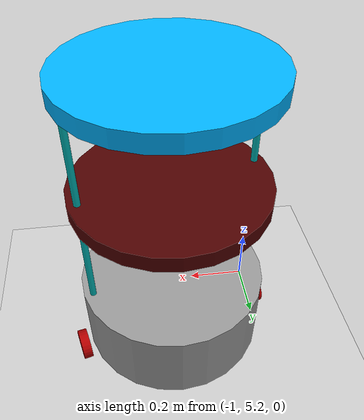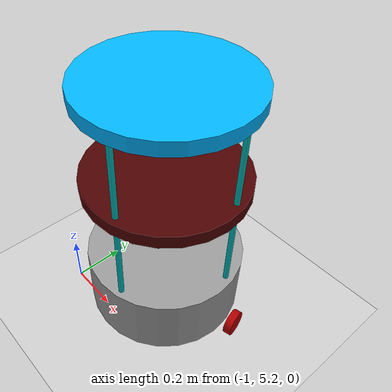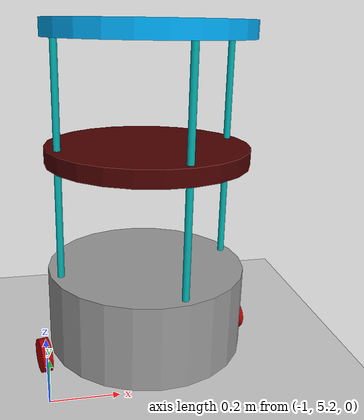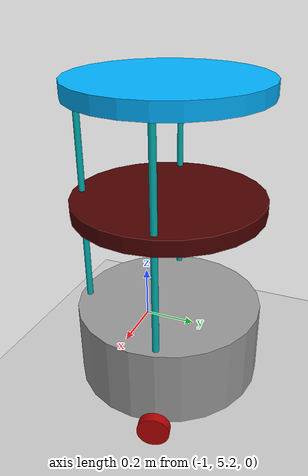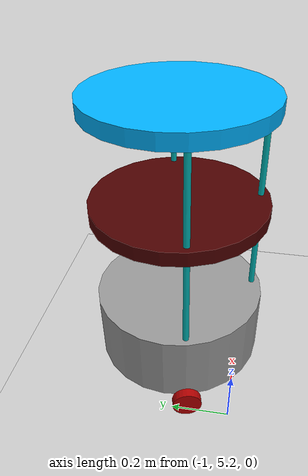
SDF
<sdf version="1.6">
 <world name="default">
  <model name="ground_plane">
   <static>1</static>
   <link name="link">
    <collision name="collision">
     <geometry><plane><normal>0 0 1</normal><size>100 100</size></plane></geometry>
     <surface><friction><ode><mu>100</mu><mu2>50</mu2></ode></friction></surface>
    </collision>
    <visual name="visual">
     <cast_shadows>0</cast_shadows>
     <geometry><plane><normal>0 0 1</normal><size>100 100</size></plane></geometry>
     <material>
      <script><uri>file://media/materials/scripts/gazebo.material</uri><name>Gazebo/Grey</name></script>
     </material>
    </visual>
   </link>
  </model>
  <model name="dummy_robot_model_0">
   <link name="link_0">
    <pose>0 0.027 0.6025 0 -0 0</pose>
    <inertial>
     <mass>1</mass>
     <inertia><ixx>0.145833</ixx><ixy>0</ixy><ixz>0</ixz><iyy>0.145833</iyy><iyz>0</iyz><izz>0.125</izz></inertia>
    </inertial>
    <visual name="visual">
     <geometry><cylinder><radius>0.3</radius><length>0.05</length></cylinder></geometry>
     <material>
      <lighting>1</lighting>
      <script><uri>file://media/materials/scripts/gazebo.material</uri><name>Gazebo/Grey</name></script>
      <shader type="pixel"><normal_map>__default__</normal_map></shader>
      <ambient>0 0 1 1</ambient>
      <diffuse>0 0.7 1 1</diffuse>
      <specular>0.01 0.01 1 1</specular>
      <emissive>0 0 0 1</emissive>
     </material>
    </visual>
    <collision name="collision">
     <geometry><cylinder><radius>0.3</radius><length>0.05</length></cylinder></geometry>
     <surface>
      <friction>
       <ode><mu>1</mu><mu2>1</mu2><fdir1>0 0 0</fdir1><slip1>0</slip1><slip2>0</slip2></ode>
       <torsional>
        <coefficient>1</coefficient>
        <patch_radius>0</patch_radius>
        <surface_radius>0</surface_radius>
        <use_patch_radius>1</use_patch_radius>
        <ode><slip>0</slip></ode>
       </torsional>
      </friction>
      <bounce><restitution_coefficient>0</restitution_coefficient><threshold>1e+06</threshold></bounce>
      <contact>
       <collide_without_contact>0</collide_without_contact>
       <collide_without_contact_bitmask>1</collide_without_contact_bitmask>
       <collide_bitmask>1</collide_bitmask>
       <ode>
        <soft_cfm>0</soft_cfm>
        <soft_erp>0.2</soft_erp>
        <kp>1e+13</kp>
        <kd>1</kd>
        <max_vel>0.01</max_vel>
        <min_depth>0</min_depth>
       </ode>
       <bullet>
        <split_impulse>1</split_impulse>
        <split_impulse_penetration_threshold>-0.01</split_impulse_penetration_threshold>
        <soft_cfm>0</soft_cfm>
        <soft_erp>0.2</soft_erp>
        <kp>1e+13</kp>
        <kd>1</kd>
       </bullet>
      </contact>
     </surface>
    </collision>
   </link>
   <link name="link_0_clone">
    <pose>0 0.027 -0.2225 0 -0 0</pose>
    <inertial>
     <mass>1</mass>
     <inertia><ixx>0.145833</ixx><ixy>0</ixy><ixz>0</ixz><iyy>0.145833</iyy><iyz>0</iyz><izz>0.125</izz></inertia>
    </inertial>
    <visual name="visual">
     <geometry><cylinder><radius>0.3</radius><length>0.25</length></cylinder></geometry>
     <material>
      <lighting>1</lighting>
      <script><uri>file://media/materials/scripts/gazebo.material</uri><name>Gazebo/Grey</name></script>
      <shader type="pixel"><normal_map>__default__</normal_map></shader>
      <ambient>0.3 0.3 0.3 1</ambient>
      <diffuse>0.7 0.7 0.7 1</diffuse>
      <specular>0.01 0.01 0.01 1</specular>
      <emissive>0 0 0 1</emissive>
     </material>
    </visual>
    <collision name="collision">
     <geometry><cylinder><radius>0.3</radius><length>0.25</length></cylinder></geometry>
     <surface>
      <friction>
       <ode><mu>1</mu><mu2>1</mu2><fdir1>0 0 0</fdir1><slip1>0</slip1><slip2>0</slip2></ode>
       <torsional>
        <coefficient>1</coefficient>
        <patch_radius>0</patch_radius>
        <surface_radius>0</surface_radius>
        <use_patch_radius>1</use_patch_radius>
        <ode><slip>0</slip></ode>
       </torsional>
      </friction>
      <bounce><restitution_coefficient>0</restitution_coefficient><threshold>1e+06</threshold></bounce>
      <contact>
       <collide_without_contact>0</collide_without_contact>
       <collide_without_contact_bitmask>1</collide_without_contact_bitmask>
       <collide_bitmask>1</collide_bitmask>
       <ode>
        <soft_cfm>0</soft_cfm>
        <soft_erp>0.2</soft_erp>
        <kp>1e+13</kp>
        <kd>1</kd>
        <max_vel>0.01</max_vel>
        <min_depth>0</min_depth>
       </ode>
       <bullet>
        <split_impulse>1</split_impulse>
        <split_impulse_penetration_threshold>-0.01</split_impulse_penetration_threshold>
        <soft_cfm>0</soft_cfm>
        <soft_erp>0.2</soft_erp>
        <kp>1e+13</kp>
        <kd>1</kd>
       </bullet>
      </contact>
     </surface>
    </collision>
   </link>
   <link name="link_0_clone_0">
    <pose>0 0.027 0.2525 0 -0 0</pose>
    <inertial>
     <mass>1</mass>
     <inertia><ixx>0.145833</ixx><ixy>0</ixy><ixz>0</ixz><iyy>0.145833</iyy><iyz>0</iyz><izz>0.125</izz></inertia>
    </inertial>
    <visual name="visual">
     <geometry><cylinder><radius>0.3</radius><length>0.05</length></cylinder></geometry>
     <material>
      <lighting>1</lighting>
      <script><uri>file://media/materials/scripts/gazebo.material</uri><name>Gazebo/Grey</name></script>
      <shader type="pixel"><normal_map>__default__</normal_map></shader>
      <ambient>0.3 0 0 0</ambient>
      <diffuse>0.7 0.7 0.7 1</diffuse>
      <specular>0.01 0.01 0.01 1</specular>
      <emissive>0 0 0 1</emissive>
     </material>
    </visual>
    <collision name="collision">
     <geometry><cylinder><radius>0.3</radius><length>0.05</length></cylinder></geometry>
     <surface>
      <friction>
       <ode><mu>1</mu><mu2>1</mu2><fdir1>0 0 0</fdir1><slip1>0</slip1><slip2>0</slip2></ode>
       <torsional>
        <coefficient>1</coefficient>
        <patch_radius>0</patch_radius>
        <surface_radius>0</surface_radius>
        <use_patch_radius>1</use_patch_radius>
        <ode><slip>0</slip></ode>
       </torsional>
      </friction>
      <bounce><restitution_coefficient>0</restitution_coefficient><threshold>1e+06</threshold></bounce>
      <contact>
       <collide_without_contact>0</collide_without_contact>
       <collide_without_contact_bitmask>1</collide_without_contact_bitmask>
       <collide_bitmask>1</collide_bitmask>
       <ode>
        <soft_cfm>0</soft_cfm>
        <soft_erp>0.2</soft_erp>
        <kp>1e+13</kp>
        <kd>1</kd>
        <max_vel>0.01</max_vel>
        <min_depth>0</min_depth>
       </ode>
       <bullet>
        <split_impulse>1</split_impulse>
        <split_impulse_penetration_threshold>-0.01</split_impulse_penetration_threshold>
        <soft_cfm>0</soft_cfm>
        <soft_erp>0.2</soft_erp>
        <kp>1e+13</kp>
        <kd>1</kd>
       </bullet>
      </contact>
     </surface>
    </collision>
   </link>
   <link name="link_1">
    <pose>-0.27 0.027 0.2525 0 -0 0</pose>
    <inertial>
     <mass>1</mass>
     <inertia><ixx>0.145833</ixx><ixy>0</ixy><ixz>0</ixz><iyy>0.145833</iyy><iyz>0</iyz><izz>0.125</izz></inertia>
    </inertial>
    <visual name="visual">
     <geometry><cylinder><radius>0.01</radius><length>0.72</length></cylinder></geometry>
     <material>
      <lighting>1</lighting>
      <script><uri>file://media/materials/scripts/gazebo.material</uri><name>Gazebo/Grey</name></script>
      <shader type="pixel"><normal_map>__default__</normal_map></shader>
      <ambient>0 0.3 0.3 1</ambient>
      <diffuse>0 0.7 0.7 1</diffuse>
      <specular>0 0.01 0.01 1</specular>
      <emissive>0 0 0 1</emissive>
     </material>
    </visual>
    <collision name="collision">
     <geometry><cylinder><radius>0.01</radius><length>0.72</length></cylinder></geometry>
     <surface>
      <friction>
       <ode><mu>1</mu><mu2>1</mu2><fdir1>0 0 0</fdir1><slip1>0</slip1><slip2>0</slip2></ode>
       <torsional>
        <coefficient>1</coefficient>
        <patch_radius>0</patch_radius>
        <surface_radius>0</surface_radius>
        <use_patch_radius>1</use_patch_radius>
        <ode><slip>0</slip></ode>
       </torsional>
      </friction>
      <bounce><restitution_coefficient>0</restitution_coefficient><threshold>1e+06</threshold></bounce>
      <contact>
       <collide_without_contact>0</collide_without_contact>
       <collide_without_contact_bitmask>1</collide_without_contact_bitmask>
       <collide_bitmask>1</collide_bitmask>
       <ode>
        <soft_cfm>0</soft_cfm>
        <soft_erp>0.2</soft_erp>
        <kp>1e+13</kp>
        <kd>1</kd>
        <max_vel>0.01</max_vel>
        <min_depth>0</min_depth>
       </ode>
       <bullet>
        <split_impulse>1</split_impulse>
        <split_impulse_penetration_threshold>-0.01</split_impulse_penetration_threshold>
        <soft_cfm>0</soft_cfm>
        <soft_erp>0.2</soft_erp>
        <kp>1e+13</kp>
        <kd>1</kd>
       </bullet>
      </contact>
     </surface>
    </collision>
   </link>
   <link name="link_1_clone">
    <pose>0 -0.243 0.2525 0 -0 0</pose>
    <inertial>
     <mass>1</mass>
     <inertia><ixx>0.145833</ixx><ixy>0</ixy><ixz>0</ixz><iyy>0.145833</iyy><iyz>0</iyz><izz>0.125</izz></inertia>
    </inertial>
    <visual name="visual">
     <geometry><cylinder><radius>0.01</radius><length>0.72</length></cylinder></geometry>
     <material>
      <lighting>1</lighting>
      <script><uri>file://media/materials/scripts/gazebo.material</uri><name>Gazebo/Grey</name></script>
      <shader type="pixel"><normal_map>__default__</normal_map></shader>
      <ambient>0 0.3 0.3 1</ambient>
      <diffuse>0 0.7 0.7 1</diffuse>
      <specular>0 0.01 0.01 1</specular>
      <emissive>0 0 0 1</emissive>
     </material>
    </visual>
    <collision name="collision">
     <geometry><cylinder><radius>0.01</radius><length>0.72</length></cylinder></geometry>
     <surface>
      <friction>
       <ode><mu>1</mu><mu2>1</mu2><fdir1>0 0 0</fdir1><slip1>0</slip1><slip2>0</slip2></ode>
       <torsional>
        <coefficient>1</coefficient>
        <patch_radius>0</patch_radius>
        <surface_radius>0</surface_radius>
        <use_patch_radius>1</use_patch_radius>
        <ode><slip>0</slip></ode>
       </torsional>
      </friction>
      <bounce><restitution_coefficient>0</restitution_coefficient><threshold>1e+06</threshold></bounce>
      <contact>
       <collide_without_contact>0</collide_without_contact>
       <collide_without_contact_bitmask>1</collide_without_contact_bitmask>
       <collide_bitmask>1</collide_bitmask>
       <ode>
        <soft_cfm>0</soft_cfm>
        <soft_erp>0.2</soft_erp>
        <kp>1e+13</kp>
        <kd>1</kd>
        <max_vel>0.01</max_vel>
        <min_depth>0</min_depth>
       </ode>
       <bullet>
        <split_impulse>1</split_impulse>
        <split_impulse_penetration_threshold>-0.01</split_impulse_penetration_threshold>
        <soft_cfm>0</soft_cfm>
        <soft_erp>0.2</soft_erp>
        <kp>1e+13</kp>
        <kd>1</kd>
       </bullet>
      </contact>
     </surface>
    </collision>
   </link>
   <link name="link_1_clone_clone">
    <pose>0.27 0.027 0.2525 0 -0 0</pose>
    <inertial>
     <mass>1</mass>
     <inertia><ixx>0.145833</ixx><ixy>0</ixy><ixz>0</ixz><iyy>0.145833</iyy><iyz>0</iyz><izz>0.125</izz></inertia>
    </inertial>
    <visual name="visual">
     <geometry><cylinder><radius>0.01</radius><length>0.72</length></cylinder></geometry>
     <material>
      <lighting>1</lighting>
      <script><uri>file://media/materials/scripts/gazebo.material</uri><name>Gazebo/Grey</name></script>
      <shader type="pixel"><normal_map>__default__</normal_map></shader>
      <ambient>0 0.3 0.3 1</ambient>
      <diffuse>0 0.7 0.7 1</diffuse>
      <specular>0 0.01 0.01 1</specular>
      <emissive>0 0 0 1</emissive>
     </material>
    </visual>
    <collision name="collision">
     <geometry><cylinder><radius>0.01</radius><length>0.72</length></cylinder></geometry>
     <surface>
      <friction>
       <ode><mu>1</mu><mu2>1</mu2><fdir1>0 0 0</fdir1><slip1>0</slip1><slip2>0</slip2></ode>
       <torsional>
        <coefficient>1</coefficient>
        <patch_radius>0</patch_radius>
        <surface_radius>0</surface_radius>
        <use_patch_radius>1</use_patch_radius>
        <ode><slip>0</slip></ode>
       </torsional>
      </friction>
      <bounce><restitution_coefficient>0</restitution_coefficient><threshold>1e+06</threshold></bounce>
      <contact>
       <collide_without_contact>0</collide_without_contact>
       <collide_without_contact_bitmask>1</collide_without_contact_bitmask>
       <collide_bitmask>1</collide_bitmask>
       <ode>
        <soft_cfm>0</soft_cfm>
        <soft_erp>0.2</soft_erp>
        <kp>1e+13</kp>
        <kd>1</kd>
        <max_vel>0.01</max_vel>
        <min_depth>0</min_depth>
       </ode>
       <bullet>
        <split_impulse>1</split_impulse>
        <split_impulse_penetration_threshold>-0.01</split_impulse_penetration_threshold>
        <soft_cfm>0</soft_cfm>
        <soft_erp>0.2</soft_erp>
        <kp>1e+13</kp>
        <kd>1</kd>
       </bullet>
      </contact>
     </surface>
    </collision>
   </link>
   <link name="link_2">
    <pose>-0 0.227 -0.3475 0 -0 0</pose>
    <inertial>
     <mass>1</mass>
     <inertia><ixx>0.1</ixx><ixy>0</ixy><ixz>0</ixz><iyy>0.1</iyy><iyz>0</iyz><izz>0.1</izz></inertia>
    </inertial>
    <visual name="visual">
     <geometry><sphere><radius>0.055</radius></sphere></geometry>
     <material>
      <lighting>1</lighting>
      <script><uri>file://media/materials/scripts/gazebo.material</uri><name>Gazebo/Grey</name></script>
      <shader type="pixel"><normal_map>__default__</normal_map></shader>
      <ambient>0.3 0.3 0.3 1</ambient>
      <diffuse>0 0 0.7 1</diffuse>
      <specular>0 0 0.01 1</specular>
      <emissive>0 0 1 1</emissive>
     </material>
    </visual>
    <collision name="collision">
     <geometry><sphere><radius>0.055</radius></sphere></geometry>
     <surface>
      <friction>
       <ode><mu>0</mu><mu2>0</mu2><fdir1>0 0 0</fdir1><slip1>1</slip1><slip2>1</slip2></ode>
       <torsional>
        <coefficient>1</coefficient>
        <patch_radius>0</patch_radius>
        <surface_radius>0</surface_radius>
        <use_patch_radius>1</use_patch_radius>
        <ode><slip>0</slip></ode>
       </torsional>
      </friction>
      <bounce><restitution_coefficient>0</restitution_coefficient><threshold>1e+06</threshold></bounce>
      <contact>
       <collide_without_contact>0</collide_without_contact>
       <collide_without_contact_bitmask>1</collide_without_contact_bitmask>
       <collide_bitmask>1</collide_bitmask>
       <ode>
        <soft_cfm>0</soft_cfm>
        <soft_erp>0.2</soft_erp>
        <kp>1e+13</kp>
        <kd>1</kd>
        <max_vel>0.01</max_vel>
        <min_depth>0</min_depth>
       </ode>
       <bullet>
        <split_impulse>1</split_impulse>
        <split_impulse_penetration_threshold>-0.01</split_impulse_penetration_threshold>
        <soft_cfm>0</soft_cfm>
        <soft_erp>0.2</soft_erp>
        <kp>1e+13</kp>
        <kd>1</kd>
       </bullet>
      </contact>
     </surface>
    </collision>
   </link>
   <link name="link_2_clone">
    <pose>0 -0.173 -0.3475 0 -0 0</pose>
    <inertial>
     <mass>1</mass>
     <inertia><ixx>0.1</ixx><ixy>0</ixy><ixz>0</ixz><iyy>0.1</iyy><iyz>0</iyz><izz>0.1</izz></inertia>
    </inertial>
    <visual name="visual">
     <geometry><sphere><radius>0.055</radius></sphere></geometry>
     <material>
      <lighting>1</lighting>
      <script><uri>file://media/materials/scripts/gazebo.material</uri><name>Gazebo/Grey</name></script>
      <shader type="pixel"><normal_map>__default__</normal_map></shader>
      <ambient>0.3 0.3 0.3 1</ambient>
      <diffuse>0.7 0.7 0.7 1</diffuse>
      <specular>0.01 0.01 0.01 1</specular>
      <emissive>0 0 0 1</emissive>
     </material>
    </visual>
    <collision name="collision">
     <geometry><sphere><radius>0.055</radius></sphere></geometry>
     <surface>
      <friction>
       <ode><mu>1</mu><mu2>1</mu2><fdir1>0 0 0</fdir1><slip1>0</slip1><slip2>0</slip2></ode>
       <torsional>
        <coefficient>1</coefficient>
        <patch_radius>0</patch_radius>
        <surface_radius>0</surface_radius>
        <use_patch_radius>1</use_patch_radius>
        <ode><slip>0</slip></ode>
       </torsional>
      </friction>
      <bounce><restitution_coefficient>0</restitution_coefficient><threshold>1e+06</threshold></bounce>
      <contact>
       <collide_without_contact>0</collide_without_contact>
       <collide_without_contact_bitmask>1</collide_without_contact_bitmask>
       <collide_bitmask>1</collide_bitmask>
       <ode>
        <soft_cfm>0</soft_cfm>
        <soft_erp>0.2</soft_erp>
        <kp>1e+13</kp>
        <kd>1</kd>
        <max_vel>0.01</max_vel>
        <min_depth>0</min_depth>
       </ode>
       <bullet>
        <split_impulse>1</split_impulse>
        <split_impulse_penetration_threshold>-0.01</split_impulse_penetration_threshold>
        <soft_cfm>0</soft_cfm>
        <soft_erp>0.2</soft_erp>
        <kp>1e+13</kp>
        <kd>1</kd>
       </bullet>
      </contact>
     </surface>
    </collision>
   </link>
   <link name="link_3">
    <pose>0.33 0.027 -0.3475 -0.000314 -1.5707 0.000314</pose>
    <inertial>
     <mass>1</mass>
     <inertia><ixx>0.145833</ixx><ixy>0</ixy><ixz>0</ixz><iyy>0.145833</iyy><iyz>0</iyz><izz>0.125</izz></inertia>
    </inertial>
    <visual name="visual">
     <geometry><cylinder><radius>0.05</radius><length>0.03</length></cylinder></geometry>
     <material>
      <lighting>1</lighting>
      <script><uri>file://media/materials/scripts/gazebo.material</uri><name>Gazebo/Grey</name></script>
      <shader type="pixel"><normal_map>__default__</normal_map></shader>
      <ambient>0.3 0 0 0</ambient>
      <diffuse>0.7 0 0 0</diffuse>
      <specular>0.01 0 0 0</specular>
      <emissive>1 0 0 0</emissive>
     </material>
    </visual>
    <collision name="collision">
     <geometry><cylinder><radius>0.05</radius><length>0.03</length></cylinder></geometry>
     <surface>
      <friction>
       <ode><mu>1</mu><mu2>1</mu2><fdir1>0 0 0</fdir1><slip1>0</slip1><slip2>0</slip2></ode>
       <torsional>
        <coefficient>1</coefficient>
        <patch_radius>0</patch_radius>
        <surface_radius>0</surface_radius>
        <use_patch_radius>1</use_patch_radius>
        <ode><slip>0</slip></ode>
       </torsional>
      </friction>
      <bounce><restitution_coefficient>0</restitution_coefficient><threshold>1e+06</threshold></bounce>
      <contact>
       <collide_without_contact>0</collide_without_contact>
       <collide_without_contact_bitmask>1</collide_without_contact_bitmask>
       <collide_bitmask>1</collide_bitmask>
       <ode>
        <soft_cfm>0</soft_cfm>
        <soft_erp>0.2</soft_erp>
        <kp>1e+13</kp>
        <kd>1</kd>
        <max_vel>0.01</max_vel>
        <min_depth>0</min_depth>
       </ode>
       <bullet>
        <split_impulse>1</split_impulse>
        <split_impulse_penetration_threshold>-0.01</split_impulse_penetration_threshold>
        <soft_cfm>0</soft_cfm>
        <soft_erp>0.2</soft_erp>
        <kp>1e+13</kp>
        <kd>1</kd>
       </bullet>
      </contact>
     </surface>
    </collision>
   </link>
   <link name="link_3_clone">
    <pose>-0.33 0.027 -0.3475 -0.000314 -1.5707 0.000314</pose>
    <inertial>
     <mass>1</mass>
     <inertia><ixx>0.145833</ixx><ixy>0</ixy><ixz>0</ixz><iyy>0.145833</iyy><iyz>0</iyz><izz>0.125</izz></inertia>
    </inertial>
    <visual name="visual">
     <geometry><cylinder><radius>0.05</radius><length>0.03</length></cylinder></geometry>
     <material>
      <lighting>1</lighting>
      <script><uri>file://media/materials/scripts/gazebo.material</uri><name>Gazebo/Grey</name></script>
      <shader type="pixel"><normal_map>__default__</normal_map></shader>
      <ambient>0.3 0 0 0</ambient>
      <diffuse>0.7 0 0 0</diffuse>
      <specular>0.01 0 0 0</specular>
      <emissive>1 0 0 0</emissive>
     </material>
    </visual>
    <collision name="collision">
     <geometry><cylinder><radius>0.05</radius><length>0.03</length></cylinder></geometry>
     <surface>
      <friction>
       <ode><mu>1</mu><mu2>1</mu2><fdir1>0 0 0</fdir1><slip1>0</slip1><slip2>0</slip2></ode>
       <torsional>
        <coefficient>1</coefficient>
        <patch_radius>0</patch_radius>
        <surface_radius>0</surface_radius>
        <use_patch_radius>1</use_patch_radius>
        <ode><slip>0</slip></ode>
       </torsional>
      </friction>
      <bounce><restitution_coefficient>0</restitution_coefficient><threshold>1e+06</threshold></bounce>
      <contact>
       <collide_without_contact>0</collide_without_contact>
       <collide_without_contact_bitmask>1</collide_without_contact_bitmask>
       <collide_bitmask>1</collide_bitmask>
       <ode>
        <soft_cfm>0</soft_cfm>
        <soft_erp>0.2</soft_erp>
        <kp>1e+13</kp>
        <kd>1</kd>
        <max_vel>0.01</max_vel>
        <min_depth>0</min_depth>
       </ode>
       <bullet>
        <split_impulse>1</split_impulse>
        <split_impulse_penetration_threshold>-0.01</split_impulse_penetration_threshold>
        <soft_cfm>0</soft_cfm>
        <soft_erp>0.2</soft_erp>
        <kp>1e+13</kp>
        <kd>1</kd>
       </bullet>
      </contact>
     </surface>
    </collision>
   </link>
   <joint name="link_0_JOINT_0" type="screw">
    <parent>link_0</parent>
    <child>link_1_clone_clone</child>
    <axis>
     <xyz>0 0 1</xyz>
     <use_parent_model_frame>0</use_parent_model_frame>
     <limit>
      <lower>-1.79769e+308</lower>
      <upper>1.79769e+308</upper>
      <effort>-1</effort>
      <velocity>-1</velocity>
     </limit>
     <dynamics>
      <spring_reference>0</spring_reference>
      <spring_stiffness>0</spring_stiffness>
      <damping>0</damping>
      <friction>0</friction>
     </dynamics>
    </axis>
    <physics>
     <ode><limit><cfm>0</cfm><erp>0.2</erp></limit><suspension><cfm>0</cfm><erp>0.2</erp></suspension></ode>
    </physics>
    <thread_pitch>1</thread_pitch>
   </joint>
   <joint name="link_0_JOINT_1" type="screw">
    <parent>link_0</parent>
    <child>link_1</child>
    <axis>
     <xyz>0 0 1</xyz>
     <use_parent_model_frame>0</use_parent_model_frame>
     <limit>
      <lower>-1.79769e+308</lower>
      <upper>1.79769e+308</upper>
      <effort>-1</effort>
      <velocity>-1</velocity>
     </limit>
     <dynamics>
      <spring_reference>0</spring_reference>
      <spring_stiffness>0</spring_stiffness>
      <damping>0</damping>
      <friction>0</friction>
     </dynamics>
    </axis>
    <physics>
     <ode><limit><cfm>0</cfm><erp>0.2</erp></limit><suspension><cfm>0</cfm><erp>0.2</erp></suspension></ode>
    </physics>
    <thread_pitch>1</thread_pitch>
   </joint>
   <joint name="link_0_JOINT_2" type="screw">
    <parent>link_0</parent>
    <child>link_1_clone</child>
    <axis>
     <xyz>0 0 1</xyz>
     <use_parent_model_frame>0</use_parent_model_frame>
     <limit>
      <lower>-1.79769e+308</lower>
      <upper>1.79769e+308</upper>
      <effort>-1</effort>
      <velocity>-1</velocity>
     </limit>
     <dynamics>
      <spring_reference>0</spring_reference>
      <spring_stiffness>0</spring_stiffness>
      <damping>0</damping>
      <friction>0</friction>
     </dynamics>
    </axis>
    <physics>
     <ode><limit><cfm>0</cfm><erp>0.2</erp></limit><suspension><cfm>0</cfm><erp>0.2</erp></suspension></ode>
    </physics>
    <thread_pitch>1</thread_pitch>
   </joint>
   <joint name="link_0_clone_0_JOINT_3" type="fixed">
    <parent>link_0_clone_0</parent>
    <child>link_1_clone_clone</child>
    <physics>
     <ode><limit><cfm>0</cfm><erp>0.2</erp></limit><suspension><cfm>0</cfm><erp>0.2</erp></suspension></ode>
    </physics>
   </joint>
   <joint name="link_0_clone_0_JOINT_4" type="fixed">
    <parent>link_0_clone_0</parent>
    <child>link_1</child>
    <physics>
     <ode><limit><cfm>0</cfm><erp>0.2</erp></limit><suspension><cfm>0</cfm><erp>0.2</erp></suspension></ode>
    </physics>
   </joint>
   <joint name="link_0_clone_0_JOINT_5" type="fixed">
    <parent>link_0_clone_0</parent>
    <child>link_1_clone</child>
    <physics>
     <ode><limit><cfm>0</cfm><erp>0.2</erp></limit><suspension><cfm>0</cfm><erp>0.2</erp></suspension></ode>
    </physics>
   </joint>
   <joint name="link_0_clone_JOINT_0" type="fixed">
    <parent>link_0_clone</parent>
    <child>link_2_clone</child>
    <physics>
     <ode><limit><cfm>0</cfm><erp>0.2</erp></limit><suspension><cfm>0</cfm><erp>0.2</erp></suspension></ode>
    </physics>
   </joint>
   <joint name="link_0_clone_JOINT_10" type="fixed">
    <parent>link_0_clone</parent>
    <child>link_2</child>
    <physics>
     <ode><limit><cfm>0</cfm><erp>0.2</erp></limit><suspension><cfm>0</cfm><erp>0.2</erp></suspension></ode>
    </physics>
   </joint>
   <joint name="link_0_clone_JOINT_11" type="revolute">
    <parent>link_0_clone</parent>
    <child>link_3_clone</child>
    <pose>-0.01 0 0 0 -0 0</pose>
    <axis>
     <xyz>0 0 -1</xyz>
     <use_parent_model_frame>0</use_parent_model_frame>
     <limit>
      <lower>-1.79769e+308</lower>
      <upper>1.79769e+308</upper>
      <effort>-1</effort>
      <velocity>-1</velocity>
     </limit>
     <dynamics>
      <spring_reference>0</spring_reference>
      <spring_stiffness>0</spring_stiffness>
      <damping>0</damping>
      <friction>0</friction>
     </dynamics>
    </axis>
    <physics>
     <ode><limit><cfm>0</cfm><erp>0.2</erp></limit><suspension><cfm>0</cfm><erp>0.2</erp></suspension></ode>
    </physics>
   </joint>
   <joint name="link_0_clone_JOINT_12" type="revolute">
    <parent>link_0_clone</parent>
    <child>link_3</child>
    <axis>
     <xyz>0 0 1</xyz>
     <use_parent_model_frame>0</use_parent_model_frame>
     <limit>
      <lower>-1.79769e+308</lower>
      <upper>1.79769e+308</upper>
      <effort>-1</effort>
      <velocity>-1</velocity>
     </limit>
     <dynamics>
      <spring_reference>0</spring_reference>
      <spring_stiffness>0</spring_stiffness>
      <damping>0</damping>
      <friction>0</friction>
     </dynamics>
    </axis>
    <physics>
     <ode><limit><cfm>0</cfm><erp>0.2</erp></limit><suspension><cfm>0</cfm><erp>0.2</erp></suspension></ode>
    </physics>
   </joint>
   <joint name="link_0_clone_JOINT_6" type="fixed">
    <parent>link_0_clone</parent>
    <child>link_1_clone</child>
    <physics>
     <ode><limit><cfm>0</cfm><erp>0.2</erp></limit><suspension><cfm>0</cfm><erp>0.2</erp></suspension></ode>
    </physics>
   </joint>
   <joint name="link_0_clone_JOINT_7" type="fixed">
    <parent>link_0_clone</parent>
    <child>link_1_clone_clone</child>
    <physics>
     <ode><limit><cfm>0</cfm><erp>0.2</erp></limit><suspension><cfm>0</cfm><erp>0.2</erp></suspension></ode>
    </physics>
   </joint>
   <joint name="link_0_clone_JOINT_8" type="fixed">
    <parent>link_0_clone</parent>
    <child>link_1</child>
    <physics>
     <ode><limit><cfm>0</cfm><erp>0.2</erp></limit><suspension><cfm>0</cfm><erp>0.2</erp></suspension></ode>
    </physics>
   </joint>
   <static>0</static>
   <pose>-0.680469 5.39865 0.40246 5e-06 0.014486 0.244291</pose>
  </model>
 </world>
</sdf>
